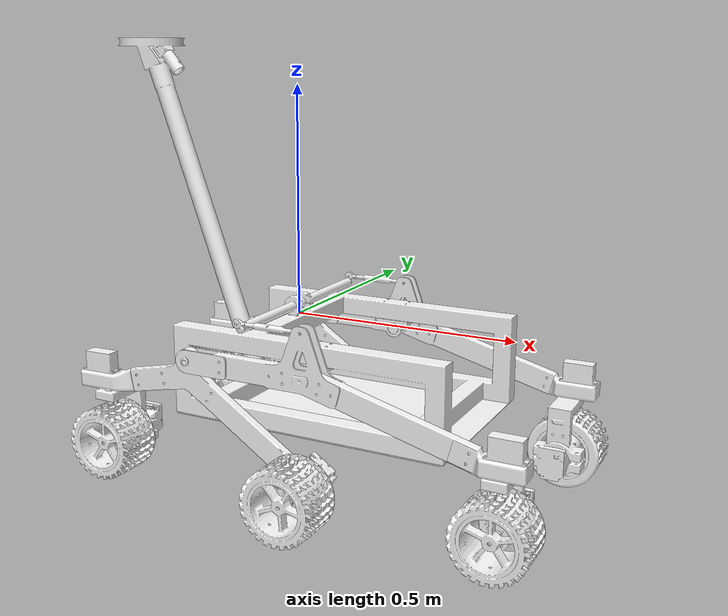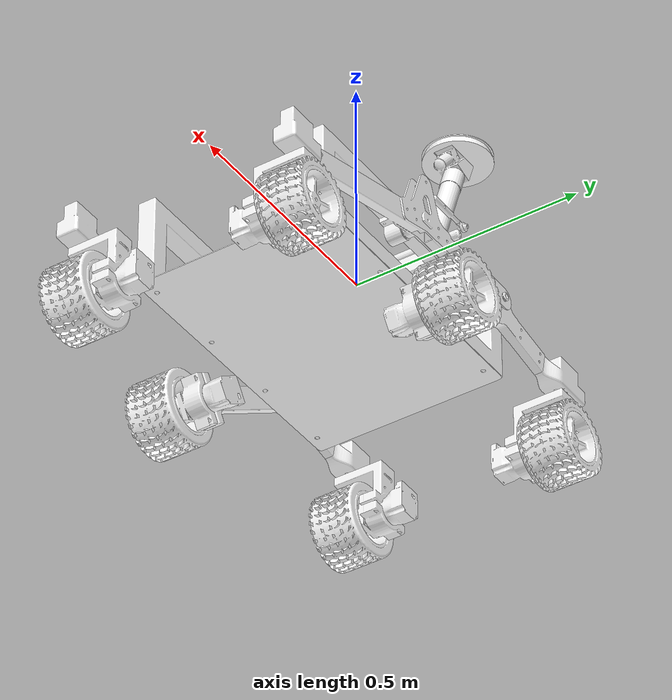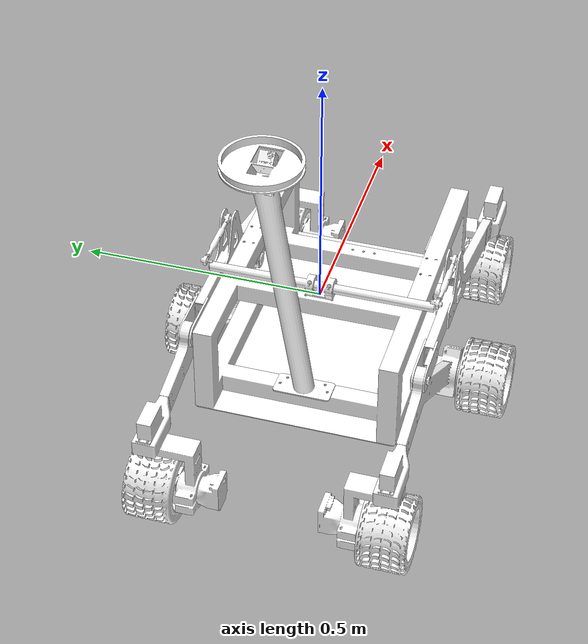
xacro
<?xml version="1.0"?>

<robot name="orthos" xmlns:xacro="http://ros.org/wiki/xacro">

  <xacro:property name="PI" value="3.1415926535897931"/>

  <xacro:include filename="$(find sirius_driver)/urdf/modules/orthos_base.xacro"/>
    <xacro:include filename="$(find sirius_driver)/urdf/modules/orthos_differential.xacro"/>
  <xacro:include filename="$(find sirius_driver)/urdf/modules/orthos_rocker_bogie_left.xacro"/>
  <xacro:include filename="$(find sirius_driver)/urdf/modules/orthos_rocker_bogie_right.xacro"/>
  <xacro:include filename="$(find sirius_driver)/urdf/modules/orthos_camera_mast.xacro"/>
  <xacro:include filename="$(find sirius_driver)/urdf/modules/orthos_mounting_plate.xacro"/>

  <xacro:orthos_base_link   							/>
  <xacro:orthos_rocker_bogie_left/>
  <xacro:orthos_rocker_bogie_right/>
  <xacro:orthos_differential   							/>
  <xacro:orthos_camera_mast 		/>
  <xacro:orthos_mounting_plate 	/>

</robot>

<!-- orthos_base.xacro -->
<robot xmlns:xacro="http://ros.org/wiki/xacro" name="orthos_base_link">
<xacro:macro name="orthos_base_link">

  <link name="base_link"/>

  <link name="base_frame_link">
    <inertial>
      <origin xyz="0 0 0" rpy="0 0 0" /> <mass value="10" />
      <inertia ixx="0.003" ixy="0" ixz="0" iyy="0.09" iyz="0" izz="0.09" />
    </inertial>
    <visual>
      <origin xyz="0 0 0" rpy="0 0 0" />
      <geometry> <mesh filename="package://orthos_description/meshes/base_frame.stl" /> </geometry>
      <material name="white">
        <color rgba="1 1 1 1"/>
      </material>
    </visual>
    <collision>
      <origin xyz="0 0 0" rpy="0 0 0" />
      <geometry> <box size="0.8 0.160 0.040"/> </geometry>
    </collision>
  </link>

  <joint name="base_frame_joint" type="fixed">
    <origin
      xyz="0 0 0" rpy="0 0 0" />
    <parent link="base_link" />
    <child link="base_frame_link" />
    <axis xyz="0 0 0" />
  </joint>

</xacro:macro>
</robot>

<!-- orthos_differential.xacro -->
<robot xmlns:xacro="http://ros.org/wiki/xacro" name="orthos_differential">
<xacro:macro name="orthos_differential">

  <link name="virtual_link_1">
    <inertial>
      <mass value="0.025" />
      <inertia ixx="5.8083e-4" ixy="0" ixz="0" iyy="3.0833e-5" iyz="0" izz="5.9083e-4" />
    </inertial>
  </link>

   <link name="virtual_link_2">
    <inertial>
      <mass value="0.025" />
      <inertia ixx="5.8083e-4" ixy="0" ixz="0" iyy="3.0833e-5" iyz="0" izz="5.9083e-4" />
    </inertial>
  </link>

   <link name="virtual_link_3">
    <inertial>
      <mass value="0.025" />
      <inertia ixx="5.8083e-4" ixy="0" ixz="0" iyy="3.0833e-5" iyz="0" izz="5.9083e-4" />
    </inertial>
  </link>

   <link name="virtual_link_4">
    <inertial>
      <mass value="0.025" />
      <inertia ixx="5.8083e-4" ixy="0" ixz="0" iyy="3.0833e-5" iyz="0" izz="5.9083e-4" />
    </inertial>
  </link>

   <joint name="right_rocker_virtual_1" type="revolute">
    <origin xyz="0 0.002 0.095" rpy="0 0 0"/>
    <limit lower="-0.349066" upper="0.349066" effort="100" velocity="3"/>
    <parent link="orthos_rocker_right"/>
    <child link="virtual_link_1"/>
    <axis xyz="1 0 0" />
  </joint>

   <joint name="virtual_1_2" type="revolute">
    <origin xyz="0 0 0" rpy="0 0 0"/>
    <limit lower="-0.349066" upper="0.349066" effort="100" velocity="3"/>
    <parent link="virtual_link_1"/>
    <child link="virtual_link_2"/>
    <axis xyz="0 1 0" />
  </joint>

     <link name="orthos_spanner_right">
    <inertial>
      <origin xyz="0 0 0" rpy="0 0 0" />
       <mass value="1" />
      <inertia ixx="0.1" ixy="0" ixz="0" iyy="0.1" iyz="0" izz="0.1" />
    </inertial>
    <visual>
      <origin xyz="0 0 0" rpy="0 0 0" />
      <geometry>
        <mesh filename="package://orthos_description/meshes/spanner.stl" />
      </geometry>
      <material name="white">
        <color rgba="1 1 1 1"/>
      </material>
    </visual>
    <collision>
      <origin xyz="0 0 0" rpy="0 0 0" />
      <geometry>
        <mesh filename="package://orthos_description/meshes/spanner.stl" />
      </geometry>
    </collision>
  </link>

   <joint name="virtual_2_spanner_right" type="revolute">
    <origin xyz="0 0 0" rpy="0 0 0"/>
    <limit lower="-0.349066" upper="0.349066" effort="100" velocity="3"/>
    <parent link="virtual_link_2" />
    <child link="orthos_spanner_right" />
    <axis xyz="0 0 1" />
  </joint>

  <joint name="spanner_right_virtual_3" type="revolute">
    <origin xyz="0 0.1505 0" rpy="0 0 0"/>
    <limit lower="-0.349066" upper="0.349066" effort="100" velocity="3"/>
    <parent link="orthos_spanner_right" />
    <child link="virtual_link_3" />
    <axis xyz="1 0 0" />
  </joint>

    <joint name="rotbar_virtual_4" type="revolute">
    <origin xyz="0 0.235 0" rpy="0 0 0"/>
    <limit lower="-0.349066" upper="0.349066" effort="100" velocity="3"/>
    <parent link="orthos_rotbar" />
    <child link="virtual_link_4" />
    <axis xyz="1 0 0" /> <!-- X axis of base_frame is y-axis of right_rocker which should be the axis here-->
  </joint>

  <link name="virtual_link_5">
    <inertial>
      <mass value="0.025" />
      <inertia ixx="5.8083e-4" ixy="0" ixz="0" iyy="3.0833e-5" iyz="0" izz="5.9083e-4" />
    </inertial>
  </link>

   <link name="virtual_link_6">
    <inertial>
      <mass value="0.025" />
      <inertia ixx="5.8083e-4" ixy="0" ixz="0" iyy="3.0833e-5" iyz="0" izz="5.9083e-4" />
    </inertial>
  </link>

   <link name="virtual_link_7">
    <inertial>
      <mass value="0.025" />
      <inertia ixx="5.8083e-4" ixy="0" ixz="0" iyy="3.0833e-5" iyz="0" izz="5.9083e-4" />
    </inertial>
  </link>

   <link name="virtual_link_8">
    <inertial>
      <mass value="0.025" />
      <inertia ixx="5.8083e-4" ixy="0" ixz="0" iyy="3.0833e-5" iyz="0" izz="5.9083e-4" />
    </inertial>
  </link>

   <joint name="left_rocker_virtual_5" type="revolute">
    <origin xyz="0 -0.002 0.095" rpy="0 0 0"/>
    <limit lower="-0.349066" upper="0.349066" effort="100" velocity="3"/>
    <parent link="orthos_rocker_left"/>
    <child link="virtual_link_5"/>
    <axis xyz="1 0 0" />
  </joint>

   <joint name="virtual_5_6" type="revolute">
    <origin xyz="0 0 0" rpy="0 0 0"/>
    <limit lower="-0.349066" upper="0.349066" effort="100" velocity="3"/>
    <parent link="virtual_link_5"/>
    <child link="virtual_link_6"/>
    <axis xyz="0 1 0" />
  </joint>

     <link name="orthos_spanner_left">
    <inertial>
      <origin xyz="0 0 0" rpy="0 0 0" />
       <mass value="1" />
      <inertia ixx="0.1" ixy="0" ixz="0" iyy="0.1" iyz="0" izz="0.1" />
    </inertial>
    <visual>
      <origin xyz="0 0 0" rpy="0 0 0" />
      <geometry>
        <mesh filename="package://orthos_description/meshes/spanner.stl" />
      </geometry>
      <material name="white">
        <color rgba="1 1 1 1"/>
      </material>
    </visual>
    <collision>
      <origin xyz="0 0 0" rpy="0 0 0" />
      <geometry>
        <mesh filename="package://orthos_description/meshes/spanner.stl" />
      </geometry>
    </collision>
  </link>

   <joint name="virtual_6_spanner_left" type="revolute">
    <origin xyz="0 0 0" rpy="3.1415 0 0"/>
     <limit lower="-0.349066" upper="0.349066" effort="100" velocity="3"/>
    <parent link="virtual_link_6" />
    <child link="orthos_spanner_left" />
    <axis xyz="0 0 1" />
  </joint>

  <joint name="spanner_left_virtual_7" type="revolute">
    <origin xyz="0 0.1505 0" rpy="0 0 0"/>
    <limit lower="-0.349066" upper="0.349066" effort="100" velocity="3"/>
    <parent link="orthos_spanner_left" />
    <child link="virtual_link_7" />
    <axis xyz="1 0 0" />
  </joint>

    <joint name="rotbar_virtual_8" type="revolute">
    <origin xyz="0 -0.235 0" rpy="0 0 0"/>
    <limit lower="-0.349066" upper="0.349066" effort="100" velocity="3"/>
    <parent link="orthos_rotbar" />
    <child link="virtual_link_8" />
    <axis xyz="1 0 0" /> <!-- X axis of base_frame is y-axis of right_rocker which should be the axis here-->
  </joint>

<!-- Base frame to rotbar -->
    <link name="orthos_rotbar">
    <inertial>
      <origin xyz="0 0 0" rpy="0 0 0" />
       <mass value="1" />
      <inertia ixx="0.1" ixy="0" ixz="0" iyy="0.1" iyz="0" izz="0.1" />
    </inertial>
    <visual>
      <origin xyz="0 0 0" rpy="0 0 0" />
      <geometry>
        <mesh filename="package://orthos_description/meshes/rotbar.stl" />
      </geometry>
      <material name="white">
        <color rgba="1 1 1 1"/>
      </material>
    </visual>
    <collision>
      <origin xyz="0 0 0" rpy="0 0 0" />
      <geometry>
        <mesh filename="package://orthos_description/meshes/rotbar.stl" />
      </geometry>
    </collision>
  </link>

<joint name="orthos_rotbar_joint" type="revolute">
    <origin xyz="0 0 0.045" rpy="0 0 0"/>
    <limit lower="-1.5708" upper="1.5708" effort="100" velocity="3"/>
    <parent link="base_frame_link" />
    <child link="orthos_rotbar" />
    <axis xyz="0 0 1" />
  </joint>

<!-- Right spanner to differential and loop with base_frame-->
     <gazebo>
        <joint name="closed_loop_joint_right" type="revolute">
            <parent>virtual_link_4</parent>
            <child>virtual_link_3</child>
            <pose>0 0 0 0 0 0</pose>
            <axis>
                <xyz>1 0 0</xyz>
            </axis>
        </joint>
    </gazebo>

    <!-- Left spanner to differential and loop with base_frame-->
         <gazebo>
        <joint name="closed_loop_joint_left" type="revolute">
            <parent>virtual_link_8</parent>
            <child>virtual_link_7</child>
            <pose>0 0 0 0 0 0</pose>
            <axis>
                <xyz>1 0 0</xyz>
            </axis>
        </joint>
    </gazebo>

</xacro:macro>
</robot>

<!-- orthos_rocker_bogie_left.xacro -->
<robot xmlns:xacro="http://ros.org/wiki/xacro" name="orthos_rocker_bogie_left">
<xacro:macro name="orthos_rocker_bogie_left">
  <!-- Rocker -->
  <link name="orthos_rocker_left">
    <inertial>
      <origin xyz="0 0 0" rpy="0 0 0" />
       <mass value="1" />
      <inertia ixx="0.316" ixy="0" ixz="0" iyy="0.166" iyz="0" izz="0.307" />
    </inertial>
    <visual>
      <origin xyz="0 0 0" rpy="0 0 0" />
      <geometry>
        <mesh filename="package://orthos_description/meshes/rocker_left.stl" />
      </geometry>
      <material name="white">
        <color rgba="1 1 1 1"/>
      </material>
    </visual>
    <collision>
      <origin xyz="0 0 0" rpy="0 0 0" />
      <geometry>
        <mesh filename="package://orthos_description/meshes/rocker_left.stl" />
      </geometry>
    </collision>
  </link>

  <joint name="orthos_rocker_left_joint" type="revolute">
    <origin xyz="0.1502 0.24465 -0.060115" rpy="0 0 -1.5708" />
    <limit lower="-1.5708" upper="1.5708" effort="100" velocity="3"/>
    <parent link="base_frame_link" />
    <child link="orthos_rocker_left" />
    <axis xyz="1 0 0" />
  </joint>

  <!-- Bogie -->
   <link name="orthos_bogie_left">
    <inertial>
      <origin xyz="0 0 0" rpy="0 0 0" />
       <mass value="1" />
      <inertia ixx="0.1" ixy="0" ixz="0" iyy="0.1" iyz="0" izz="0.1" />
    </inertial>
    <visual>
      <origin xyz="0 0 0" rpy="0 0 0" />
      <geometry>
        <mesh filename="package://orthos_description/meshes/bogie_left.stl" />
      </geometry>
      <material name="white">
        <color rgba="1 1 1 1"/>
      </material>
    </visual>
    <collision>
      <origin xyz="0 0 0" rpy="0 0 0" />
      <geometry>
        <mesh filename="package://orthos_description/meshes/bogie_left.stl" />
      </geometry>
    </collision>
  </link>

   <joint name="orthos_bogie_left_joint" type="revolute">
    <origin xyz="0 -0.276262 0" rpy="0 0 0"/>
    <limit lower="-1.5708" upper="1.5708" effort="100" velocity="3"/>
    <parent link="orthos_rocker_left" />
    <child link="orthos_bogie_left" />
    <axis xyz="1 0 0" />
  </joint>

  <!-- Turn motor front-->
   <link name="orthos_turn_left_front">
    <inertial>
      <origin xyz="0 0 0" rpy="0 0 0" />
       <mass value="1" />
      <inertia ixx="0.1" ixy="0" ixz="0" iyy="0.1" iyz="0" izz="0.1" />
    </inertial>
    <visual>
      <origin xyz="0 0 0" rpy="0 0 0" />
      <geometry>
        <mesh filename="package://orthos_description/meshes/turn.stl" />
      </geometry>
      <material name="white">
        <color rgba="1 1 1 1"/>
      </material>
    </visual>
    <collision>
      <origin xyz="0 0 0" rpy="0 0 0" />
      <geometry>
        <mesh filename="package://orthos_description/meshes/turn.stl" />
      </geometry>
    </collision>
  </link>

   <joint name="orthos_turn_left_front_joint" type="fixed">
    <origin xyz="0 0.364 -0.097" rpy="0 0 0"/>
    <parent link="orthos_rocker_left" />
    <child link="orthos_turn_left_front" />
    <axis xyz="0 0 0" />
  </joint>

  <!-- Motor and wheel mounting-->
   <link name="orthos_motor_left_1">
    <inertial>
      <origin xyz="0 0 0" rpy="0 0 0" />
       <mass value="1" />
      <inertia ixx="0.1" ixy="0" ixz="0" iyy="0.1" iyz="0" izz="0.1" />
    </inertial>
    <visual>
      <origin xyz="0 0 0" rpy="0 0 0" />
      <geometry>
        <mesh filename="package://orthos_description/meshes/motor.stl" />
      </geometry>
      <material name="white">
        <color rgba="1 1 1 1"/>
      </material>
    </visual>
    <collision>
      <origin xyz="0 0 0" rpy="0 0 0" />
      <geometry>
        <mesh filename="package://orthos_description/meshes/motor.stl" />
      </geometry>
    </collision>
  </link>

   <joint name="orthos_motor_left_1_joint" type="revolute">
    <origin xyz="0 0.04 -0.14" rpy="0 0 0"/>
    <limit lower="-0.523599" upper="0.523599" effort="100" velocity="3"/>
    <parent link="orthos_turn_left_front" />
    <child link="orthos_motor_left_1" />
    <axis xyz="0 0 1" />
  </joint>

   <!-- Wheel front -->
   <link name="orthos_wheel_left_1">
    <inertial>
      <origin xyz="0 0 0" rpy="0 0 0" />
       <mass value="1" />
      <inertia ixx="0.1" ixy="0" ixz="0" iyy="0.1" iyz="0" izz="0.1" />
    </inertial>
    <visual>
      <origin xyz="0 0 0" rpy="0 0 0" />
      <geometry>
        <mesh filename="package://orthos_description/meshes/wheel.stl" />
      </geometry>
      <material name="white">
        <color rgba="1 1 1 1"/>
      </material>
    </visual>
    <collision>
      <origin xyz="0 0 0" rpy="0 0 0" />
      <geometry>
        <mesh filename="package://orthos_description/meshes/wheel.stl" />
      </geometry>
    </collision>
  </link>

   <joint name="orthos_wheel_left_1_joint" type="continuous">
    <origin xyz="0 0 0" rpy="0 0 0"/>
    <parent link="orthos_motor_left_1" />
    <child link="orthos_wheel_left_1" />
    <axis xyz="1 0 0" />
  </joint>

  <!-- Motor mid -->
   <link name="orthos_motor_left_2">
    <inertial>
      <origin xyz="0 0 0" rpy="0 0 0" />
       <mass value="1" />
      <inertia ixx="0.1" ixy="0" ixz="0" iyy="0.1" iyz="0" izz="0.1" />
    </inertial>
    <visual>
      <origin xyz="0 0 0" rpy="0 0 0" />
      <geometry>
        <mesh filename="package://orthos_description/meshes/motor_mid.stl" />
      </geometry>
      <material name="white">
        <color rgba="1 1 1 1"/>
      </material>
    </visual>
    <collision>
      <origin xyz="0 0 0" rpy="0 0 0" />
      <geometry>
        <mesh filename="package://orthos_description/meshes/motor_mid.stl" />
      </geometry>
    </collision>
  </link>

   <joint name="orthos_motor_left_2_joint" type="fixed">
    <origin xyz="-0.0305 0.2852 -0.2205" rpy="0 0 0"/>
    <limit lower="-0.523599" upper="0.523599" effort="100" velocity="3"/>
    <parent link="orthos_bogie_left" />
    <child link="orthos_motor_left_2" />
    <axis xyz="1 0 0" />
  </joint>

  <!-- Wheel mid -->
   <link name="orthos_wheel_left_2">
    <inertial>
      <origin xyz="0 0 0" rpy="0 0 0" />
       <mass value="1" />
      <inertia ixx="0.1" ixy="0" ixz="0" iyy="0.1" iyz="0" izz="0.1" />
    </inertial>
    <visual>
      <origin xyz="0 0 0" rpy="0 0 0" />
      <geometry>
        <mesh filename="package://orthos_description/meshes/wheel.stl" />
      </geometry>
      <material name="white">
        <color rgba="1 1 1 1"/>
      </material>
    </visual>
    <collision>
      <origin xyz="0 0 0" rpy="0 0 0" />
      <geometry>
        <mesh filename="package://orthos_description/meshes/motor.stl" />
      </geometry>
    </collision>
  </link>

   <joint name="orthos_wheel_left_2_joint" type="continuous">
    <origin xyz="-0.055 0 0" rpy="0 0 0"/>
    <parent link="orthos_motor_left_2" />
    <child link="orthos_wheel_left_2" />
    <axis xyz="1 0 0" />
  </joint>

<!-- Turn motor rear -->
  <link name="orthos_turn_left_rear">
    <inertial>
      <origin xyz="0 0 0" rpy="0 0 0" />
       <mass value="1" />
      <inertia ixx="0.1" ixy="0" ixz="0" iyy="0.1" iyz="0" izz="0.1" />
    </inertial>
    <visual>
      <origin xyz="0 0 0" rpy="0 0 0" />
      <geometry>
        <mesh filename="package://orthos_description/meshes/turn_rear.stl" />
      </geometry>
      <material name="white">
        <color rgba="1 1 1 1"/>
      </material>
    </visual>
    <collision>
      <origin xyz="0 0 0" rpy="0 0 0" />
      <geometry>
        <mesh filename="package://orthos_description/meshes/turn_rear.stl" />
      </geometry>
    </collision>
  </link>

   <joint name="orthos_turn_left_rear_joint" type="fixed">
    <origin xyz="0 -0.217 -0.0653" rpy="0 0 0"/>

    <parent link="orthos_bogie_left" />
    <child link="orthos_turn_left_rear" />
    <axis xyz="0 0 0" />
  </joint>

  <!-- Motor and wheel mounting rear-->
   <link name="orthos_motor_left_3">
    <inertial>
      <origin xyz="0 0 0" rpy="0 0 0" />
       <mass value="1" />
      <inertia ixx="0.1" ixy="0" ixz="0" iyy="0.1" iyz="0" izz="0.1" />
    </inertial>
    <visual>
      <origin xyz="0 0 0" rpy="0 0 0" />
      <geometry>
        <mesh filename="package://orthos_description/meshes/motor.stl" />
      </geometry>
      <material name="white">
        <color rgba="1 1 1 1"/>
      </material>
    </visual>
    <collision>
      <origin xyz="0 0 0" rpy="0 0 0" />
      <geometry>
        <mesh filename="package://orthos_description/meshes/motor.stl" />
      </geometry>
    </collision>
  </link>

   <joint name="orthos_motor_left_3_joint" type="revolute">
    <origin xyz="0 0 -0.15" rpy="0 0 0"/>
    <limit lower="-0.523599" upper="0.523599" effort="100" velocity="3"/>
    <parent link="orthos_turn_left_rear" />
    <child link="orthos_motor_left_3" />
    <axis xyz="0 0 1" />
  </joint>

 <link name="orthos_wheel_left_3">
    <inertial>
      <origin xyz="0 0 0" rpy="0 0 0" />
       <mass value="1" />
      <inertia ixx="0.1" ixy="0" ixz="0" iyy="0.1" iyz="0" izz="0.1" />
    </inertial>
    <visual>
      <origin xyz="0 0 0" rpy="0 0 0" />
      <geometry>
        <mesh filename="package://orthos_description/meshes/wheel.stl" />
      </geometry>
      <material name="white">
        <color rgba="1 1 1 1"/>
      </material>
    </visual>
    <collision>
      <origin xyz="0 0 0" rpy="0 0 0" />
      <geometry>
        <mesh filename="package://orthos_description/meshes/wheel.stl" />
      </geometry>
    </collision>
  </link>

   <joint name="orthos_wheel_left_3_joint" type="continuous">
    <origin xyz="0 0 0" rpy="0 0 0"/>
    <parent link="orthos_motor_left_3" />
    <child link="orthos_wheel_left_3" />
    <axis xyz="1 0 0" />
  </joint>

  <transmission name="trans_wheel_left_1">
    <type>transmission_interface/SimpleTransmission</type>
    <joint name="orthos_wheel_left_1_joint">
      <hardwareInterface>hardware_interface/VelocityJointInterface</hardwareInterface>
    </joint>
    <actuator name="motor_wheel_left_1">
      <mechanicalReduction>100</mechanicalReduction>
    </actuator>
  </transmission>

  <transmission name="trans_wheel_left_3">
    <type>transmission_interface/SimpleTransmission</type>
    <joint name="orthos_wheel_left_3_joint">
      <hardwareInterface>hardware_interface/VelocityJointInterface</hardwareInterface>
    </joint>
    <actuator name="motor_wheel_left_3">
      <mechanicalReduction>100</mechanicalReduction>
    </actuator>
  </transmission>

  <transmission name="trans_turn_left_front">
    <type>transmission_interface/SimpleTransmission</type>
    <joint name="orthos_motor_left_1_joint">
      <hardwareInterface>hardware_interface/PositionJointInterface</hardwareInterface>
    </joint>
    <actuator name="motor_turn_left_front">
      <mechanicalReduction>100</mechanicalReduction>
    </actuator>
  </transmission>

    <transmission name="trans_motor_left_rear">
    <type>transmission_interface/SimpleTransmission</type>
    <joint name="orthos_motor_left_3_joint">
      <hardwareInterface>hardware_interface/PositionJointInterface</hardwareInterface>
    </joint>
    <actuator name="motor_turn_left_rear">
      <mechanicalReduction>100</mechanicalReduction>
    </actuator>
  </transmission>
</xacro:macro>
</robot>

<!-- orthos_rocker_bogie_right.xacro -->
<robot xmlns:xacro="http://ros.org/wiki/xacro" name="orthos_rocker_bogie_right">
<xacro:macro name="orthos_rocker_bogie_right">

  <link name="orthos_rocker_right">
    <inertial>
      <origin xyz="0 0 0" rpy="0 0 0" />
       <mass value="1" />
      <inertia ixx="0.316" ixy="0" ixz="0" iyy="0.166" iyz="0" izz="0.307" />
    </inertial>
    <visual>
      <origin xyz="0 0 0" rpy="0 0 0" />
      <geometry>
        <mesh filename="package://orthos_description/meshes/rocker_right.stl" />
      </geometry>
      <material name="white">
        <color rgba="1 1 1 1"/>
      </material>
    </visual>
    <collision>
      <origin xyz="0 0 0" rpy="0 0 0" />
      <geometry>
        <mesh filename="package://orthos_description/meshes/rocker_right.stl" />
      </geometry>
    </collision>
  </link>

  <joint name="orthos_rocker_right_joint" type="revolute">
    <origin xyz="0.1502 -0.24465 -0.060115" rpy="0 0 1.5708" />
    <limit lower="-1.5708" upper="1.5708" effort="100" velocity="3"/>
    <parent link="base_frame_link" />
    <child link="orthos_rocker_right" />
    <axis xyz="1 0 0" />
  </joint>

   <link name="orthos_bogie_right">
    <inertial>
      <origin xyz="0 0 0" rpy="0 0 0" />
       <mass value="1" />
      <inertia ixx="0.1" ixy="0" ixz="0" iyy="0.1" iyz="0" izz="0.1" />
    </inertial>
    <visual>
      <origin xyz="0 0 0" rpy="0 0 0" />
      <geometry>
        <mesh filename="package://orthos_description/meshes/bogie_right.stl" />
      </geometry>
      <material name="white">
        <color rgba="1 1 1 1"/>
      </material>
    </visual>
    <collision>
      <origin xyz="0 0 0" rpy="0 0 0" />
      <geometry>
        <mesh filename="package://orthos_description/meshes/bogie_right.stl" />
      </geometry>
    </collision>
  </link>

   <joint name="orthos_bogie_right_joint" type="revolute">
    <origin xyz="0 0.276262 0" rpy="0 0 0"/>
    <limit lower="-1.5708" upper="1.5708" effort="100" velocity="3"/>
    <parent link="orthos_rocker_right" />
    <child link="orthos_bogie_right" />
    <axis xyz="1 0 0" />
  </joint>

   <link name="orthos_turn_right_front">
    <inertial>
      <origin xyz="0 0 0" rpy="0 0 0" />
       <mass value="1" />
      <inertia ixx="0.1" ixy="0" ixz="0" iyy="0.1" iyz="0" izz="0.1" />
    </inertial>
    <visual>
      <origin xyz="0 0 0" rpy="0 0 0" />
      <geometry>
        <mesh filename="package://orthos_description/meshes/turn.stl" />
      </geometry>
      <material name="white">
        <color rgba="1 1 1 1"/>
      </material>
    </visual>
    <collision>
      <origin xyz="0 0 0" rpy="0 0 0" />
      <geometry>
        <mesh filename="package://orthos_description/meshes/turn.stl" />
      </geometry>
    </collision>
  </link>

   <joint name="orthos_turn_right_front_joint" type="fixed">
    <origin xyz="0 -0.364 -0.097" rpy="0 0 3.1415"/>

    <parent link="orthos_rocker_right" />
    <child link="orthos_turn_right_front" />
    <axis xyz="0 0 0" />
  </joint>

   <link name="orthos_motor_right_1">
    <inertial>
      <origin xyz="0 0 0" rpy="0 0 0" />
       <mass value="1" />
      <inertia ixx="0.1" ixy="0" ixz="0" iyy="0.1" iyz="0" izz="0.1" />
    </inertial>
    <visual>
      <origin xyz="0 0 0" rpy="0 0 0" />
      <geometry>
        <mesh filename="package://orthos_description/meshes/motor.stl" />
      </geometry>
      <material name="white">
        <color rgba="1 1 1 1"/>
      </material>
    </visual>
    <collision>
      <origin xyz="0 0 0" rpy="0 0 0" />
      <geometry>
        <mesh filename="package://orthos_description/meshes/motor.stl" />
      </geometry>
    </collision>
  </link>

   <joint name="orthos_motor_right_1_joint" type="revolute">
    <origin xyz="0 0.04 -0.14" rpy="0 0 3.1415"/>
    <limit lower="-0.523599" upper="0.523599" effort="100" velocity="3"/>
    <parent link="orthos_turn_right_front" />
    <child link="orthos_motor_right_1" />
    <axis xyz="0 0 1" />
  </joint>

   <link name="orthos_wheel_right_1">
    <inertial>
      <origin xyz="0 0 0" rpy="0 0 0" />
       <mass value="1" />
      <inertia ixx="0.1" ixy="0" ixz="0" iyy="0.1" iyz="0" izz="0.1" />
    </inertial>
    <visual>
      <origin xyz="0 0 0" rpy="0 0 0" />
      <geometry>
        <mesh filename="package://orthos_description/meshes/wheel.stl" />
      </geometry>
      <material name="white">
        <color rgba="1 1 1 1"/>
      </material>
    </visual>
    <collision>
      <origin xyz="0 0 0" rpy="0 0 0" />
      <geometry>
        <mesh filename="package://orthos_description/meshes/wheel.stl" />
      </geometry>
    </collision>
  </link>

   <joint name="orthos_wheel_right_1_joint" type="continuous">
    <origin xyz="0 0 0" rpy="0 0 0"/>
    <parent link="orthos_motor_right_1" />
    <child link="orthos_wheel_right_1" />
    <axis xyz="1 0 0" />
  </joint>

 <link name="orthos_motor_right_2">
    <inertial>
      <origin xyz="0 0 0" rpy="0 0 0" />
       <mass value="1" />
      <inertia ixx="0.1" ixy="0" ixz="0" iyy="0.1" iyz="0" izz="0.1" />
    </inertial>
    <visual>
      <origin xyz="0 0 0" rpy="0 0 0" />
      <geometry>
        <mesh filename="package://orthos_description/meshes/motor_mid.stl" />
      </geometry>
      <material name="white">
        <color rgba="1 1 1 1"/>
      </material>
    </visual>
    <collision>
      <origin xyz="0 0 0" rpy="0 0 0" />
      <geometry>
        <mesh filename="package://orthos_description/meshes/motor_mid.stl" />
      </geometry>
    </collision>
  </link>

   <joint name="orthos_motor_right_2_joint" type="fixed">
    <origin xyz="-0.0305 -0.2852 -0.2205" rpy="-1.97920340718 0 0"/>
    <limit lower="-0.523599" upper="0.523599" effort="100" velocity="3"/>
    <parent link="orthos_bogie_right" />
    <child link="orthos_motor_right_2" />
    <axis xyz="1 0 0" />
  </joint>

   <link name="orthos_wheel_right_2">
    <inertial>
      <origin xyz="0 0 0" rpy="0 0 0" />
       <mass value="1" />
      <inertia ixx="0.1" ixy="0" ixz="0" iyy="0.1" iyz="0" izz="0.1" />
    </inertial>
    <visual>
      <origin xyz="0 0 0" rpy="0 0 0" />
      <geometry>
        <mesh filename="package://orthos_description/meshes/wheel.stl" />
      </geometry>
      <material name="white">
        <color rgba="1 1 1 1"/>
      </material>
    </visual>
    <collision>
      <origin xyz="0 0 0" rpy="0 0 0" />
      <geometry>
        <mesh filename="package://orthos_description/meshes/motor.stl" />
      </geometry>
    </collision>
  </link>

   <joint name="orthos_wheel_right_2_joint" type="continuous">
    <origin xyz="-0.055 0 0" rpy="0 0 0"/>
    <parent link="orthos_motor_right_2" />
    <child link="orthos_wheel_right_2" />
    <axis xyz="1 0 0" />
  </joint>

   <link name="orthos_turn_right_rear">
    <inertial>
      <origin xyz="0 0 0" rpy="0 0 0" />
       <mass value="1" />
      <inertia ixx="0.1" ixy="0" ixz="0" iyy="0.1" iyz="0" izz="0.1" />
    </inertial>
    <visual>
      <origin xyz="0 0 0" rpy="0 0 0" />
      <geometry>
        <mesh filename="package://orthos_description/meshes/turn_rear.stl" />
      </geometry>
      <material name="white">
        <color rgba="1 1 1 1"/>
      </material>
    </visual>
    <collision>
      <origin xyz="0 0 0" rpy="0 0 0" />
      <geometry>
        <mesh filename="package://orthos_description/meshes/turn_rear.stl" />
      </geometry>
    </collision>
  </link>

   <joint name="orthos_turn_right_rear_joint" type="fixed">
    <origin xyz="0 0.217 -0.0653" rpy="0 0 3.1415"/>

    <parent link="orthos_bogie_right" />
    <child link="orthos_turn_right_rear" />
    <axis xyz="0 0 0" />
  </joint>

    <link name="orthos_motor_right_3">
    <inertial>
      <origin xyz="0 0 0" rpy="0 0 0" />
       <mass value="1" />
      <inertia ixx="0.1" ixy="0" ixz="0" iyy="0.1" iyz="0" izz="0.1" />
    </inertial>
    <visual>
      <origin xyz="0 0 0" rpy="0 0 0" />
      <geometry>
        <mesh filename="package://orthos_description/meshes/motor.stl" />
      </geometry>
      <material name="white">
        <color rgba="1 1 1 1"/>
      </material>
    </visual>
    <collision>
      <origin xyz="0 0 0" rpy="0 0 0" />
      <geometry>
        <mesh filename="package://orthos_description/meshes/motor.stl" />
      </geometry>
    </collision>
  </link>

   <joint name="orthos_motor_right_3_joint" type="revolute">
    <origin xyz="0 0 -0.15" rpy="0 0 3.1415"/>
    <limit lower="-0.523599" upper="0.523599" effort="100" velocity="3"/>
    <parent link="orthos_turn_right_rear" />
    <child link="orthos_motor_right_3" />
    <axis xyz="0 0 1" />
  </joint>

   <link name="orthos_wheel_right_3">
    <inertial>
      <origin xyz="0 0 0" rpy="0 0 0" />
       <mass value="1" />
      <inertia ixx="0.1" ixy="0" ixz="0" iyy="0.1" iyz="0" izz="0.1" />
    </inertial>
    <visual>
      <origin xyz="0 0 0" rpy="0 0 0" />
      <geometry>
        <mesh filename="package://orthos_description/meshes/wheel.stl" />
      </geometry>
      <material name="white">
        <color rgba="1 1 1 1"/>
      </material>
    </visual>
    <collision>
      <origin xyz="0 0 0" rpy="0 0 0" />
      <geometry>
        <mesh filename="package://orthos_description/meshes/wheel.stl" />
      </geometry>
    </collision>
  </link>

   <joint name="orthos_wheel_right_3_joint" type="continuous">
    <origin xyz="0 0 0" rpy="0 0 0"/>
    <parent link="orthos_motor_right_3" />
    <child link="orthos_wheel_right_3" />
    <axis xyz="1 0 0" />
  </joint>

<transmission name="trans_wheel_right_1">
    <type>transmission_interface/SimpleTransmission</type>
    <joint name="orthos_wheel_right_1_joint">
      <hardwareInterface>hardware_interface/VelocityJointInterface</hardwareInterface>
    </joint>
    <actuator name="motor_wheel_right_1">
      <mechanicalReduction>100</mechanicalReduction>
    </actuator>
  </transmission>

<transmission name="trans_wheel_right_3">
    <type>transmission_interface/SimpleTransmission</type>
    <joint name="orthos_wheel_right_3_joint">
      <hardwareInterface>hardware_interface/VelocityJointInterface</hardwareInterface>
    </joint>
    <actuator name="motor_wheel_right_3">
      <mechanicalReduction>100</mechanicalReduction>
    </actuator>
  </transmission>

  <transmission name="trans_turn_right_front">
    <type>transmission_interface/SimpleTransmission</type>
    <joint name="orthos_motor_right_1_joint">
      <hardwareInterface>hardware_interface/PositionJointInterface</hardwareInterface>
    </joint>
    <actuator name="motor_turn_right_front">
      <mechanicalReduction>100</mechanicalReduction>
    </actuator>
  </transmission>

    <transmission name="trans_turn_right_rear">
    <type>transmission_interface/SimpleTransmission</type>
    <joint name="orthos_motor_right_3_joint">
      <hardwareInterface>hardware_interface/PositionJointInterface</hardwareInterface>
    </joint>
    <actuator name="motor_wheel_right_3">
      <mechanicalReduction>100</mechanicalReduction>
    </actuator>
  </transmission>

</xacro:macro>
</robot>

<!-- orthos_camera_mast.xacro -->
<robot xmlns:xacro="http://ros.org/wiki/xacro" name="orthos_camera_mast">
<xacro:macro name="orthos_camera_mast">

  <link name="camera_mast">
    <inertial>
      <origin xyz="0 0 0" rpy="0 0 0" />
      <mass value="2.56" />
      <inertia ixx="0.007" ixy="0" ixz="0" iyy="0.008" iyz="0" izz="0.014" />
    </inertial>
    <visual>
      <origin xyz="0 0 0" rpy="0 0 0" />
      <geometry>
        <mesh filename="package://orthos_description/meshes/camera_mast.stl" />
      </geometry>
      <material name="white">
        <color rgba="1 1 1 1"/>
      </material>
    </visual>
    <collision>
      <origin xyz="0.08 0 -0.025" rpy="0 0 0" />
      <geometry>
        <mesh filename="package://orthos_description/meshes/camera_mast.stl" />
      </geometry>
    </collision>
  </link>

  <joint name="camera_mast_joint" type="fixed">
    <origin xyz="-0.1155 0 -0.1559" rpy="0 0 -1.5708" />
    <parent link="base_frame_link" />
    <child link="camera_mast" />
    <axis xyz="0 0 0" />
  </joint>

</xacro:macro>
</robot>

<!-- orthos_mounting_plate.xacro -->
<robot xmlns:xacro="http://ros.org/wiki/xacro" name="orthos_plate">
<xacro:macro name="orthos_mounting_plate">

  <link name="mounting_plate">
    <inertial>
      <origin
        xyz="0 0 0" rpy="0 0 0" />
      <mass value="4.35" />
      <inertia ixx="0.133" ixy="0" ixz="0" iyy="0.278" iyz="0" izz="0.410" />
    </inertial>
    <visual>
      <origin xyz="0 0 0" rpy="0 0 0" />
      <geometry>
        <mesh filename="package://orthos_description/meshes/mounting_plate.stl" />
      </geometry>
      <material name="white">
        <color rgba="1 1 1 1"/>
      </material>
    </visual>
    <collision>
      <origin xyz="0 0 0" rpy="0 0 0" />
       <geometry>
        <mesh filename="package://orthos_description/meshes/mounting_plate.stl" />
      </geometry>
    </collision>
  </link>

  <joint name="mounting_plate_joint" type="fixed">
    <origin xyz="0.12284 0 -0.19806" rpy="0 0 0" />
    <parent link="base_frame_link" />
    <child link="mounting_plate" />
    <axis xyz="0 0 0" />
  </joint>

</xacro:macro>
</robot>
